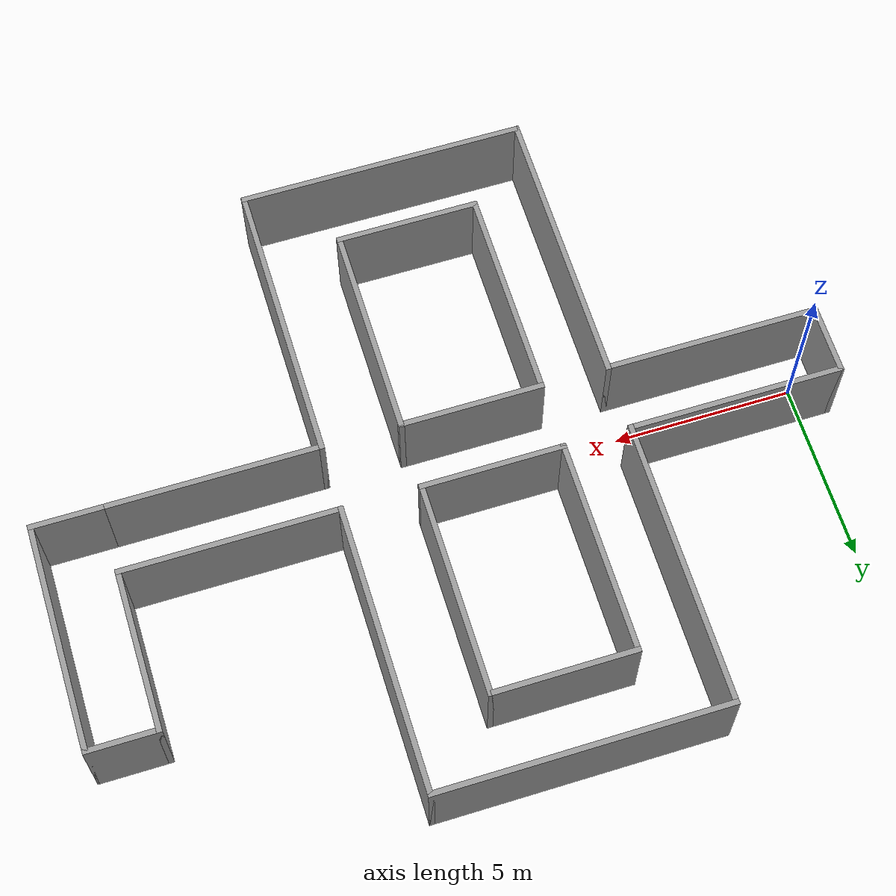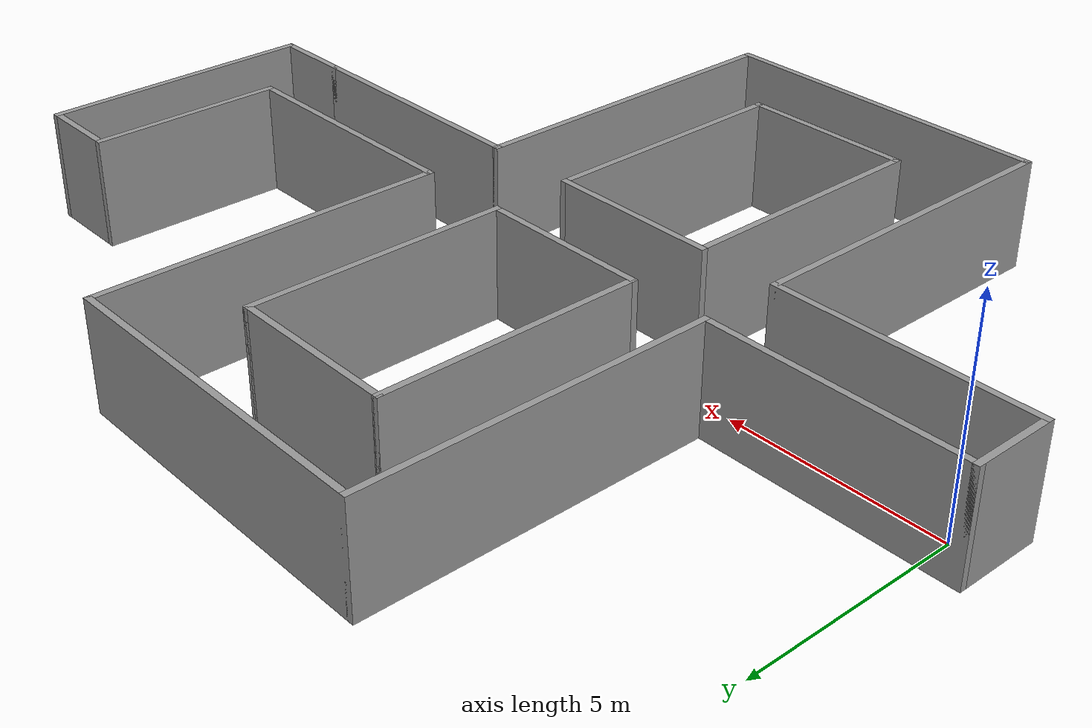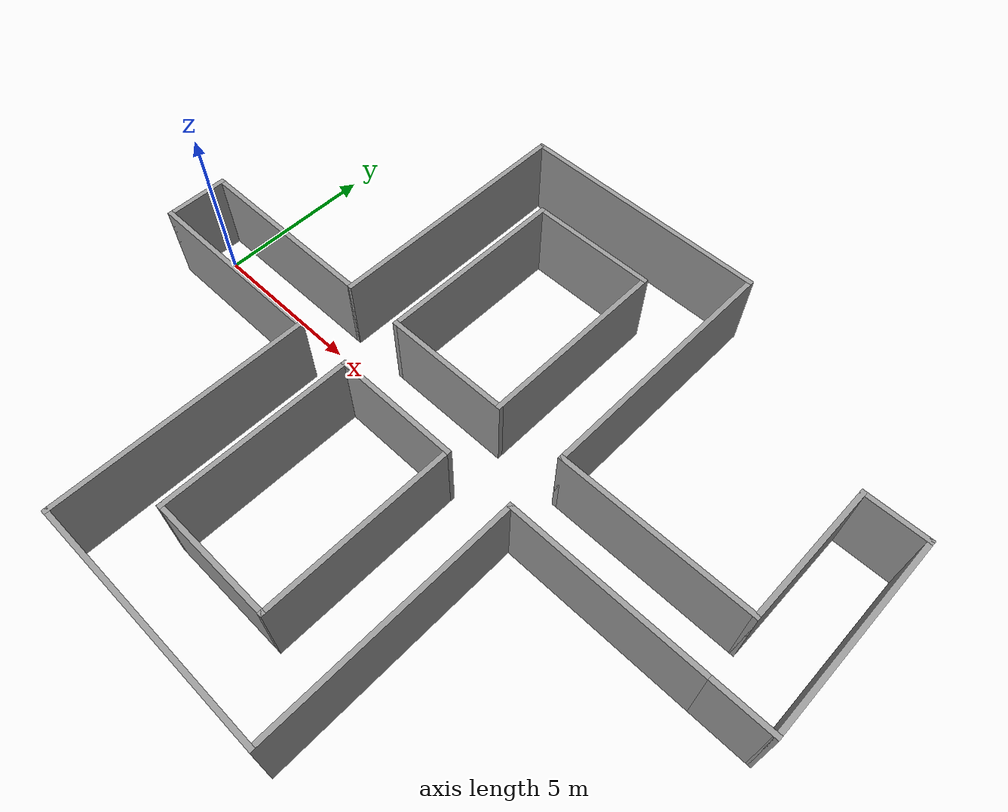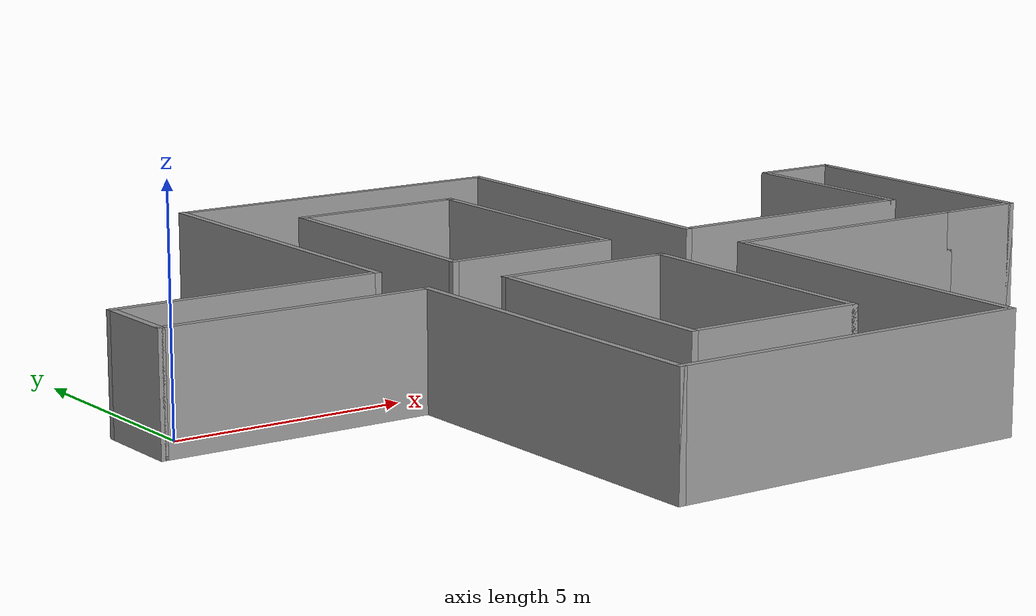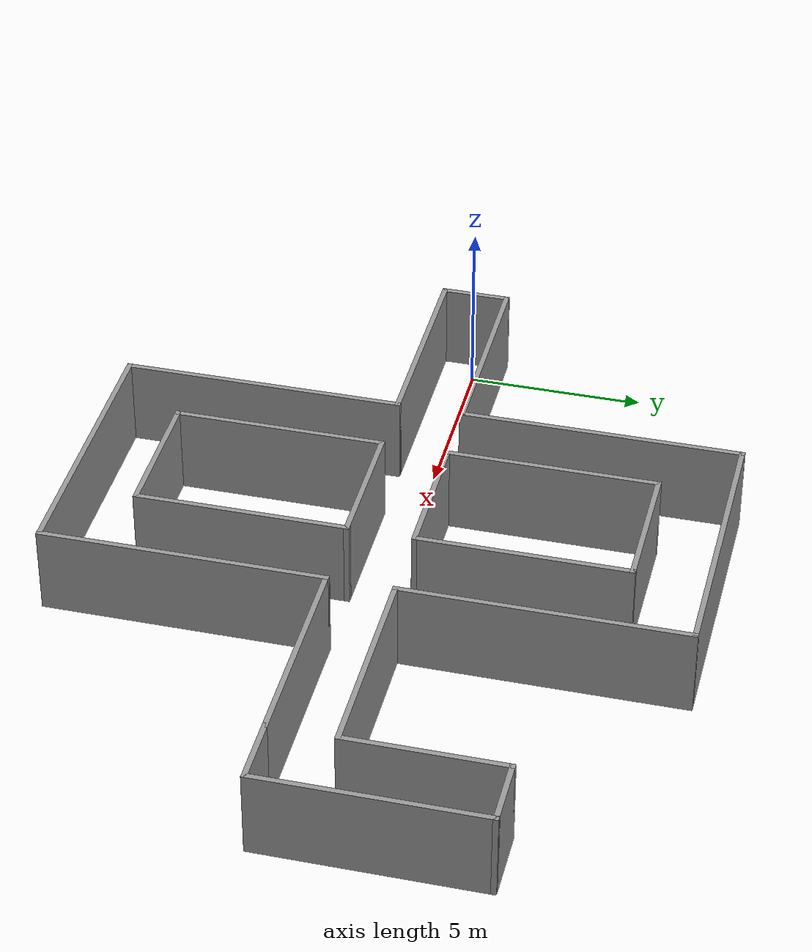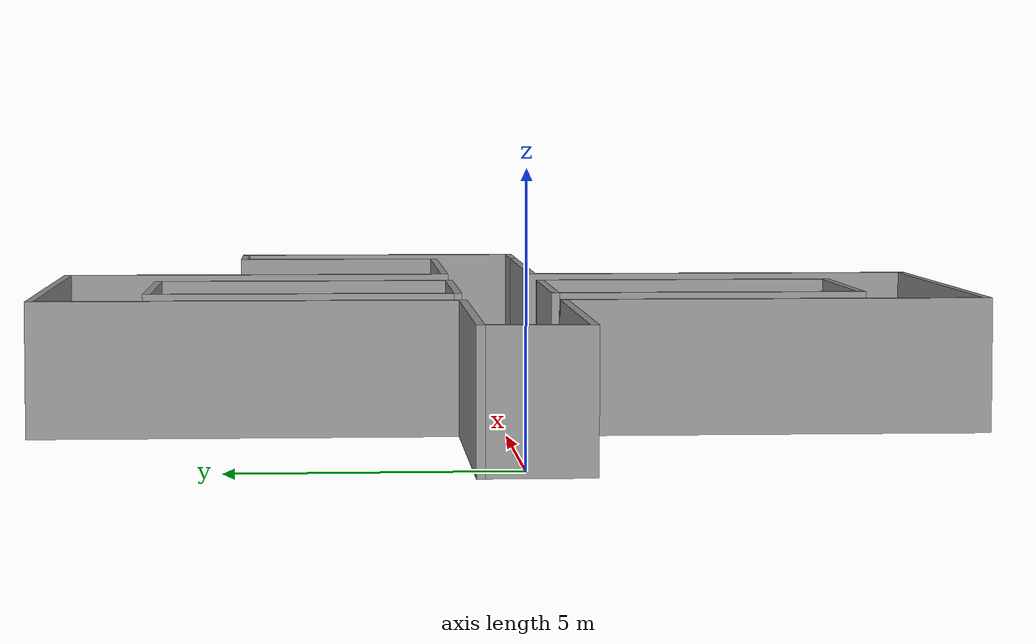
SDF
<?xml version='1.0'?>
<sdf version='1.6'>
  <model name='maze_2'>
    <pose frame=''>9.89 -0.125 0 0 -0 0</pose>
    <link name='Wall_14'>
      <collision name='Wall_14_Collision'>
        <geometry>
          <box>
            <size>6 0.15 2.5</size>
          </box>
        </geometry>
        <pose frame=''>0 0 1.25 0 -0 0</pose>
      </collision>
      <visual name='Wall_14_Visual'>
        <pose frame=''>0 0 1.25 0 -0 0</pose>
        <geometry>
          <box>
            <size>6 0.15 2.5</size>
          </box>
        </geometry>
        <material>
          <script>
            <uri>file://media/materials/scripts/gazebo.material</uri>
            <name>Gazebo/Grey</name>
          </script>
          <ambient>1 1 1 1</ambient>
        </material>
      </visual>
      <pose frame=''>-7.775 0.925 0 0 -0 0</pose>
    </link>
    <link name='Wall_17'>
      <collision name='Wall_17_Collision'>
        <geometry>
          <box>
            <size>8 0.15 2.5</size>
          </box>
        </geometry>
        <pose frame=''>0 0 1.25 0 -0 0</pose>
      </collision>
      <visual name='Wall_17_Visual'>
        <pose frame=''>0 0 1.25 0 -0 0</pose>
        <geometry>
          <box>
            <size>8 0.15 2.5</size>
          </box>
        </geometry>
        <material>
          <script>
            <uri>file://media/materials/scripts/gazebo.material</uri>
            <name>Gazebo/Grey</name>
          </script>
          <ambient>1 1 1 1</ambient>
        </material>
      </visual>
      <pose frame=''>-4.85 4.85 0 0 -0 1.5708</pose>
    </link>
    <link name='Wall_18'>
      <collision name='Wall_18_Collision'>
        <geometry>
          <box>
            <size>8 0.15 2.5</size>
          </box>
        </geometry>
        <pose frame=''>0 0 1.25 0 -0 0</pose>
      </collision>
      <visual name='Wall_18_Visual'>
        <pose frame=''>0 0 1.25 0 -0 0</pose>
        <geometry>
          <box>
            <size>8 0.15 2.5</size>
          </box>
        </geometry>
        <material>
          <script>
            <uri>file://media/materials/scripts/gazebo.material</uri>
            <name>Gazebo/Grey</name>
          </script>
          <ambient>1 1 1 1</ambient>
        </material>
      </visual>
      <pose frame=''>-0.925 8.775 0 0 -0 0</pose>
    </link>
    <link name='Wall_19'>
      <collision name='Wall_19_Collision'>
        <geometry>
          <box>
            <size>8 0.15 2.5</size>
          </box>
        </geometry>
        <pose frame=''>0 0 1.25 0 -0 0</pose>
      </collision>
      <visual name='Wall_19_Visual'>
        <pose frame=''>0 0 1.25 0 -0 0</pose>
        <geometry>
          <box>
            <size>8 0.15 2.5</size>
          </box>
        </geometry>
        <material>
          <script>
            <uri>file://media/materials/scripts/gazebo.material</uri>
            <name>Gazebo/Grey</name>
          </script>
          <ambient>1 1 1 1</ambient>
        </material>
      </visual>
      <pose frame=''>3 4.85 0 0 0 -1.5708</pose>
    </link>
    <link name='Wall_20'>
      <collision name='Wall_20_Collision'>
        <geometry>
          <box>
            <size>6 0.15 2.5</size>
          </box>
        </geometry>
        <pose frame=''>0 0 1.25 0 -0 0</pose>
      </collision>
      <visual name='Wall_20_Visual'>
        <pose frame=''>0 0 1.25 0 -0 0</pose>
        <geometry>
          <box>
            <size>6 0.15 2.5</size>
          </box>
        </geometry>
        <material>
          <script>
            <uri>file://media/materials/scripts/gazebo.material</uri>
            <name>Gazebo/Grey</name>
          </script>
          <ambient>1 1 1 1</ambient>
        </material>
      </visual>
      <pose frame=''>5.925 0.925 0 0 -0 0</pose>
    </link>
    <link name='Wall_21'>
      <collision name='Wall_21_Collision'>
        <geometry>
          <box>
            <size>4.5 0.15 2.5</size>
          </box>
        </geometry>
        <pose frame=''>0 0 1.25 0 -0 0</pose>
      </collision>
      <visual name='Wall_21_Visual'>
        <pose frame=''>0 0 1.25 0 -0 0</pose>
        <geometry>
          <box>
            <size>4.5 0.15 2.5</size>
          </box>
        </geometry>
        <material>
          <script>
            <uri>file://media/materials/scripts/gazebo.material</uri>
            <name>Gazebo/Grey</name>
          </script>
          <ambient>1 1 1 1</ambient>
        </material>
      </visual>
      <pose frame=''>8.85 3.1 0 0 -0 1.5708</pose>
    </link>
    <link name='Wall_22'>
      <collision name='Wall_22_Collision'>
        <geometry>
          <box>
            <size>2 0.15 2.5</size>
          </box>
        </geometry>
        <pose frame=''>0 0 1.25 0 -0 0</pose>
      </collision>
      <visual name='Wall_22_Visual'>
        <pose frame=''>0 0 1.25 0 -0 0</pose>
        <geometry>
          <box>
            <size>2 0.15 2.5</size>
          </box>
        </geometry>
        <material>
          <script>
            <uri>file://media/materials/scripts/gazebo.material</uri>
            <name>Gazebo/Grey</name>
          </script>
          <ambient>1 1 1 1</ambient>
        </material>
      </visual>
      <pose frame=''>9.775 5.275 0 0 -0 0</pose>
    </link>
    <link name='Wall_30'>
      <collision name='Wall_30_Collision'>
        <geometry>
          <box>
            <size>2 0.15 2.5</size>
          </box>
        </geometry>
        <pose frame=''>0 0 1.25 0 -0 0</pose>
      </collision>
      <visual name='Wall_30_Visual'>
        <pose frame=''>0 0 1.25 0 -0 0</pose>
        <geometry>
          <box>
            <size>2 0.15 2.5</size>
          </box>
        </geometry>
        <material>
          <script>
            <uri>file://media/materials/scripts/gazebo.material</uri>
            <name>Gazebo/Grey</name>
          </script>
          <ambient>1 1 1 1</ambient>
        </material>
      </visual>
      <pose frame=''>-10.7 0 0 0 0 -1.5708</pose>
    </link>
    <link name='Wall_32'>
      <collision name='Wall_32_Collision'>
        <geometry>
          <box>
            <size>6 0.15 2.5</size>
          </box>
        </geometry>
        <pose frame=''>0 0 1.25 0 -0 0</pose>
      </collision>
      <visual name='Wall_32_Visual'>
        <pose frame=''>0 0 1.25 0 -0 0</pose>
        <geometry>
          <box>
            <size>6 0.15 2.5</size>
          </box>
        </geometry>
        <material>
          <script>
            <uri>file://media/materials/scripts/gazebo.material</uri>
            <name>Gazebo/Grey</name>
          </script>
          <ambient>1 1 1 1</ambient>
        </material>
      </visual>
      <pose frame=''>-7.775 -0.925 0 0 -0 0</pose>
    </link>
    <link name='Wall_34'>
      <collision name='Wall_34_Collision'>
        <geometry>
          <box>
            <size>8 0.15 2.5</size>
          </box>
        </geometry>
        <pose frame=''>0 0 1.25 0 -0 0</pose>
      </collision>
      <visual name='Wall_34_Visual'>
        <pose frame=''>0 0 1.25 0 -0 0</pose>
        <geometry>
          <box>
            <size>8 0.15 2.5</size>
          </box>
        </geometry>
        <material>
          <script>
            <uri>file://media/materials/scripts/gazebo.material</uri>
            <name>Gazebo/Grey</name>
          </script>
          <ambient>1 1 1 1</ambient>
        </material>
      </visual>
      <pose frame=''>-4.85 -4.85 0 0 0 -1.5708</pose>
    </link>
    <link name='Wall_36'>
      <collision name='Wall_36_Collision'>
        <geometry>
          <box>
            <size>8 0.15 2.5</size>
          </box>
        </geometry>
        <pose frame=''>0 0 1.25 0 -0 0</pose>
      </collision>
      <visual name='Wall_36_Visual'>
        <pose frame=''>0 0 1.25 0 -0 0</pose>
        <geometry>
          <box>
            <size>8 0.15 2.5</size>
          </box>
        </geometry>
        <material>
          <script>
            <uri>file://media/materials/scripts/gazebo.material</uri>
            <name>Gazebo/Grey</name>
          </script>
          <ambient>1 1 1 1</ambient>
        </material>
      </visual>
      <pose frame=''>-0.925 -8.775 0 0 -0 0</pose>
    </link>
    <link name='Wall_37'>
      <collision name='Wall_37_Collision'>
        <geometry>
          <box>
            <size>8 0.15 2.5</size>
          </box>
        </geometry>
        <pose frame=''>0 0 1.25 0 -0 0</pose>
      </collision>
      <visual name='Wall_37_Visual'>
        <pose frame=''>0 0 1.25 0 -0 0</pose>
        <geometry>
          <box>
            <size>8 0.15 2.5</size>
          </box>
        </geometry>
        <material>
          <script>
            <uri>file://media/materials/scripts/gazebo.material</uri>
            <name>Gazebo/Grey</name>
          </script>
          <ambient>1 1 1 1</ambient>
        </material>
      </visual>
      <pose frame=''>3 -4.85 0 0 -0 1.5708</pose>
    </link>
    <link name='Wall_39'>
      <collision name='Wall_39_Collision'>
        <geometry>
          <box>
            <size>6 0.15 2.5</size>
          </box>
        </geometry>
        <pose frame=''>0 0 1.25 0 -0 0</pose>
      </collision>
      <visual name='Wall_39_Visual'>
        <pose frame=''>0 0 1.25 0 -0 0</pose>
        <geometry>
          <box>
            <size>6 0.15 2.5</size>
          </box>
        </geometry>
        <material>
          <script>
            <uri>file://media/materials/scripts/gazebo.material</uri>
            <name>Gazebo/Grey</name>
          </script>
          <ambient>1 1 1 1</ambient>
        </material>
      </visual>
      <pose frame=''>5.925 -0.925 0 0 -0 0</pose>
    </link>
    <link name='Wall_43'>
      <collision name='Wall_43_Collision'>
        <geometry>
          <box>
            <size>2 0.15 2.5</size>
          </box>
        </geometry>
        <pose frame=''>0 0 1.25 0 -0 0</pose>
      </collision>
      <visual name='Wall_43_Visual'>
        <pose frame=''>0 0 1.25 0 -0 0</pose>
        <geometry>
          <box>
            <size>2 0.15 2.5</size>
          </box>
        </geometry>
        <material>
          <script>
            <uri>file://media/materials/scripts/gazebo.material</uri>
            <name>Gazebo/Grey</name>
          </script>
          <ambient>1 1 1 1</ambient>
        </material>
      </visual>
      <pose frame=''>9.775 -0.925 0 0 -0 0</pose>
    </link>
    <link name='Wall_44'>
      <collision name='Wall_44_Collision'>
        <geometry>
          <box>
            <size>6.35 0.15 2.5</size>
          </box>
        </geometry>
        <pose frame=''>0 0 1.25 0 -0 0</pose>
      </collision>
      <visual name='Wall_44_Visual'>
        <pose frame=''>0 0 1.25 0 -0 0</pose>
        <geometry>
          <box>
            <size>6.35 0.15 2.5</size>
          </box>
        </geometry>
        <material>
          <script>
            <uri>file://media/materials/scripts/gazebo.material</uri>
            <name>Gazebo/Grey</name>
          </script>
          <ambient>1 1 1 1</ambient>
        </material>
      </visual>
      <pose frame=''>10.7 2.175 0 0 -0 1.5708</pose>
    </link>
    <link name='Wall_47'>
      <collision name='Wall_47_Collision'>
        <geometry>
          <box>
            <size>6 0.15 2.5</size>
          </box>
        </geometry>
        <pose frame=''>0 0 1.25 0 -0 0</pose>
      </collision>
      <visual name='Wall_47_Visual'>
        <pose frame=''>0 0 1.25 0 -0 0</pose>
        <geometry>
          <box>
            <size>6 0.15 2.5</size>
          </box>
        </geometry>
        <material>
          <script>
            <uri>file://media/materials/scripts/gazebo.material</uri>
            <name>Gazebo/Grey</name>
          </script>
          <ambient>1 1 1 1</ambient>
        </material>
      </visual>
      <pose frame=''>-3 3.85 0 0 -0 1.5708</pose>
    </link>
    <link name='Wall_48'>
      <collision name='Wall_48_Collision'>
        <geometry>
          <box>
            <size>4 0.15 2.5</size>
          </box>
        </geometry>
        <pose frame=''>0 0 1.25 0 -0 0</pose>
      </collision>
      <visual name='Wall_48_Visual'>
        <pose frame=''>0 0 1.25 0 -0 0</pose>
        <geometry>
          <box>
            <size>4 0.15 2.5</size>
          </box>
        </geometry>
        <material>
          <script>
            <uri>file://media/materials/scripts/gazebo.material</uri>
            <name>Gazebo/Grey</name>
          </script>
          <ambient>1 1 1 1</ambient>
        </material>
      </visual>
      <pose frame=''>-1.075 6.775 0 0 -0 0</pose>
    </link>
    <link name='Wall_49'>
      <collision name='Wall_49_Collision'>
        <geometry>
          <box>
            <size>6 0.15 2.5</size>
          </box>
        </geometry>
        <pose frame=''>0 0 1.25 0 -0 0</pose>
      </collision>
      <visual name='Wall_49_Visual'>
        <pose frame=''>0 0 1.25 0 -0 0</pose>
        <geometry>
          <box>
            <size>6 0.15 2.5</size>
          </box>
        </geometry>
        <material>
          <script>
            <uri>file://media/materials/scripts/gazebo.material</uri>
            <name>Gazebo/Grey</name>
          </script>
          <ambient>1 1 1 1</ambient>
        </material>
      </visual>
      <pose frame=''>0.849999 3.85 0 0 0 -1.5708</pose>
    </link>
    <link name='Wall_50'>
      <collision name='Wall_50_Collision'>
        <geometry>
          <box>
            <size>4 0.15 2.5</size>
          </box>
        </geometry>
        <pose frame=''>0 0 1.25 0 -0 0</pose>
      </collision>
      <visual name='Wall_50_Visual'>
        <pose frame=''>0 0 1.25 0 -0 0</pose>
        <geometry>
          <box>
            <size>4 0.15 2.5</size>
          </box>
        </geometry>
        <material>
          <script>
            <uri>file://media/materials/scripts/gazebo.material</uri>
            <name>Gazebo/Grey</name>
          </script>
          <ambient>1 1 1 1</ambient>
        </material>
      </visual>
      <pose frame=''>-1.075 0.925 0 0 -0 3.14159</pose>
    </link>
    <link name='Wall_53'>
      <collision name='Wall_53_Collision'>
        <geometry>
          <box>
            <size>6 0.15 2.5</size>
          </box>
        </geometry>
        <pose frame=''>0 0 1.25 0 -0 0</pose>
      </collision>
      <visual name='Wall_53_Visual'>
        <pose frame=''>0 0 1.25 0 -0 0</pose>
        <geometry>
          <box>
            <size>6 0.15 2.5</size>
          </box>
        </geometry>
        <material>
          <script>
            <uri>file://media/materials/scripts/gazebo.material</uri>
            <name>Gazebo/Grey</name>
          </script>
          <ambient>1 1 1 1</ambient>
        </material>
      </visual>
      <pose frame=''>-3 -3.85 0 0 0 -1.5708</pose>
    </link>
    <link name='Wall_54'>
      <collision name='Wall_54_Collision'>
        <geometry>
          <box>
            <size>4 0.15 2.5</size>
          </box>
        </geometry>
        <pose frame=''>0 0 1.25 0 -0 0</pose>
      </collision>
      <visual name='Wall_54_Visual'>
        <pose frame=''>0 0 1.25 0 -0 0</pose>
        <geometry>
          <box>
            <size>4 0.15 2.5</size>
          </box>
        </geometry>
        <material>
          <script>
            <uri>file://media/materials/scripts/gazebo.material</uri>
            <name>Gazebo/Grey</name>
          </script>
          <ambient>1 1 1 1</ambient>
        </material>
      </visual>
      <pose frame=''>-1.075 -6.775 0 0 -0 0</pose>
    </link>
    <link name='Wall_55'>
      <collision name='Wall_55_Collision'>
        <geometry>
          <box>
            <size>6 0.15 2.5</size>
          </box>
        </geometry>
        <pose frame=''>0 0 1.25 0 -0 0</pose>
      </collision>
      <visual name='Wall_55_Visual'>
        <pose frame=''>0 0 1.25 0 -0 0</pose>
        <geometry>
          <box>
            <size>6 0.15 2.5</size>
          </box>
        </geometry>
        <material>
          <script>
            <uri>file://media/materials/scripts/gazebo.material</uri>
            <name>Gazebo/Grey</name>
          </script>
          <ambient>1 1 1 1</ambient>
        </material>
      </visual>
      <pose frame=''>0.849999 -3.85 0 0 -0 1.5708</pose>
    </link>
    <link name='Wall_56'>
      <collision name='Wall_56_Collision'>
        <geometry>
          <box>
            <size>4 0.15 2.5</size>
          </box>
        </geometry>
        <pose frame=''>0 0 1.25 0 -0 0</pose>
      </collision>
      <visual name='Wall_56_Visual'>
        <pose frame=''>0 0 1.25 0 -0 0</pose>
        <geometry>
          <box>
            <size>4 0.15 2.5</size>
          </box>
        </geometry>
        <material>
          <script>
            <uri>file://media/materials/scripts/gazebo.material</uri>
            <name>Gazebo/Grey</name>
          </script>
          <ambient>1 1 1 1</ambient>
        </material>
      </visual>
      <pose frame=''>-1.075 -0.925 0 0 -0 3.14159</pose>
    </link>
    <static>1</static>
  </model>
</sdf>
